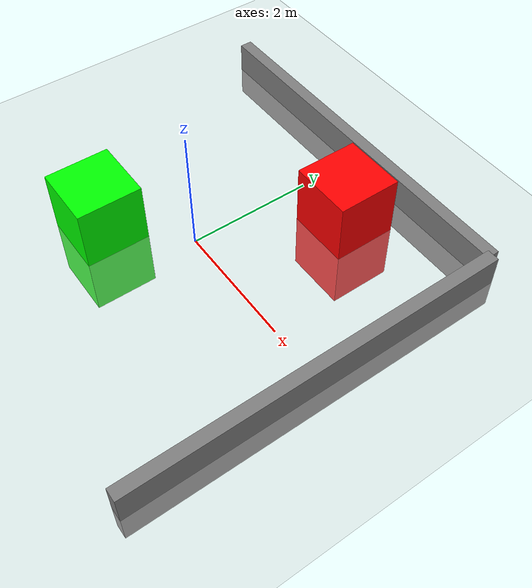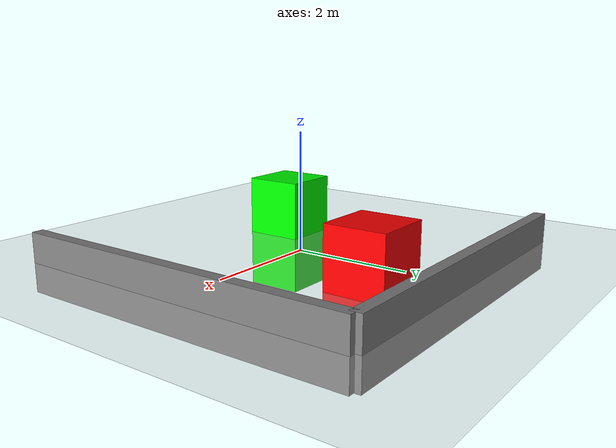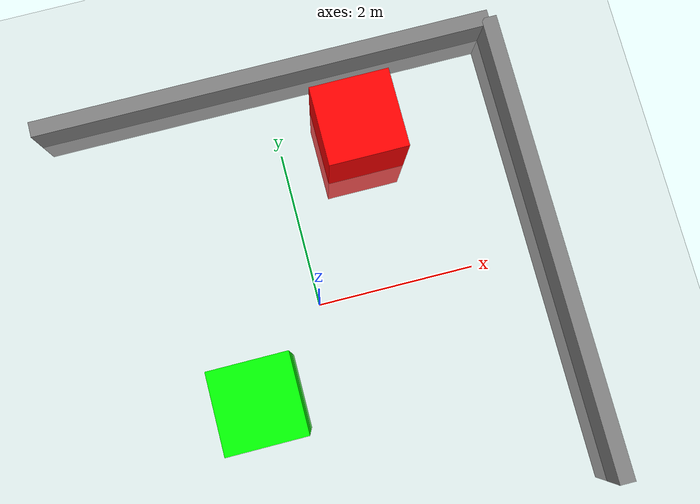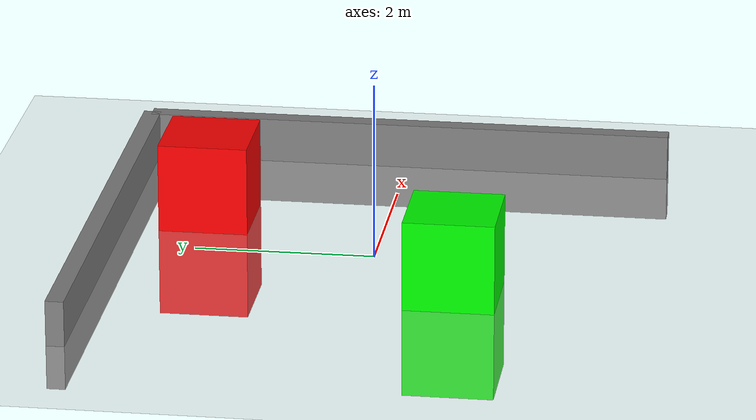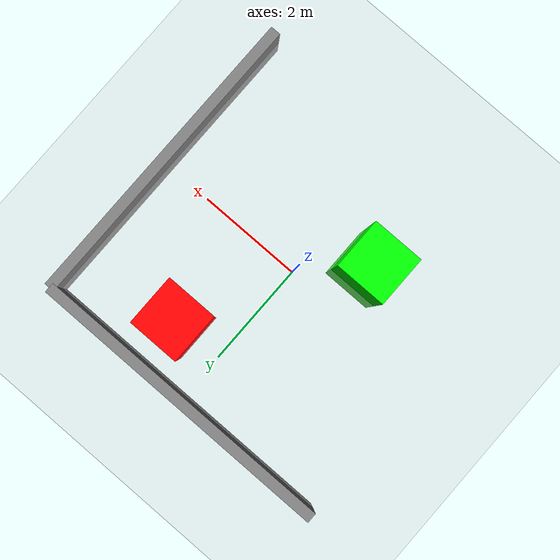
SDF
<?xml version="1.0" ?>
<sdf version="1.6">
  <world name="custom_world">
    <!-- Ground Plane -->
    <model name="ground_plane">
      <static>true</static>
      <link name="link">
        <collision name="collision">
          <geometry>
            <plane>
              <normal>0 0 1</normal>
              <size>100 100</size>
            </plane>
          </geometry>
        </collision>
        <visual name="visual">
          <geometry>
            <plane>
              <normal>0 0 1</normal>
              <size>100 100</size>
            </plane>
          </geometry>
          <material>
            <ambient>0.8 0.8 0.8 1</ambient>
            <diffuse>0.8 0.8 0.8 1</diffuse>
          </material>
        </visual>
      </link>
    </model>

    <!-- Light Source -->
    <light type="directional" name="sun">
      <cast_shadows>true</cast_shadows>
      <pose>0 0 10 0 0 0</pose>
      <diffuse>0.8 0.8 0.8 1</diffuse>
      <specular>0.2 0.2 0.2 1</specular>
      <direction>-0.5 0.1 -0.9</direction>
    </light>

    <!-- Wall 1 (Vertical) -->
    <model name="wall_1">
      <static>true</static>
      <pose>3 0 0 0 0 0</pose>
      <link name="link">
        <collision name="collision">
          <geometry>
            <box>
              <size>0.2 6 1</size>
            </box>
          </geometry>
        </collision>
        <visual name="visual">
          <geometry>
            <box>
              <size>0.2 6 1</size>
            </box>
          </geometry>
          <material>
            <ambient>0.5 0.5 0.5 1</ambient>
            <diffuse>0.5 0.5 0.5 1</diffuse>
          </material>
        </visual>
      </link>
    </model>

    <!-- Wall 2 (Horizontal) -->
    <model name="wall_2">
      <static>true</static>
      <pose>0 3 0 0 0 1.5708</pose>
      <link name="link">
        <collision name="collision">
          <geometry>
            <box>
              <size>0.2 6 1</size>
            </box>
          </geometry>
        </collision>
        <visual name="visual">
          <geometry>
            <box>
              <size>0.2 6 1</size>
            </box>
          </geometry>
          <material>
            <ambient>0.5 0.5 0.5 1</ambient>
            <diffuse>0.5 0.5 0.5 1</diffuse>
          </material>
        </visual>
      </link>
    </model>

    <!-- Obstacle 1 (Green Box) -->
    <model name="obstacle_1">
      <static>true</static>
      <pose>-1 -1 0 0 0 0</pose>
      <link name="link">
        <collision name="collision">
          <geometry>
            <box>
              <size>1 1 2</size>
            </box>
          </geometry>
        </collision>
        <visual name="visual">
          <geometry>
            <box>
              <size>1 1 2</size>
            </box>
          </geometry>
          <material>
            <ambient>0 1 0 1</ambient>
            <diffuse>0 1 0 1</diffuse>
          </material>
        </visual>
      </link>
    </model>

    <!-- Obstacle 2 (Red Box) -->
    <model name="obstacle_2">
      <static>true</static>
      <pose>1 2 0 0 0 0</pose>
      <link name="link">
        <collision name="collision">
          <geometry>
            <box>
              <size>1 1 2</size>
            </box>
          </geometry>
        </collision>
        <visual name="visual">
          <geometry>
            <box>
              <size>1 1 2</size>
            </box>
          </geometry>
          <material>
            <ambient>1 0 0 1</ambient>
            <diffuse>1 0 0 1</diffuse>
          </material>
        </visual>
      </link>
    </model>

  </world>
</sdf>
